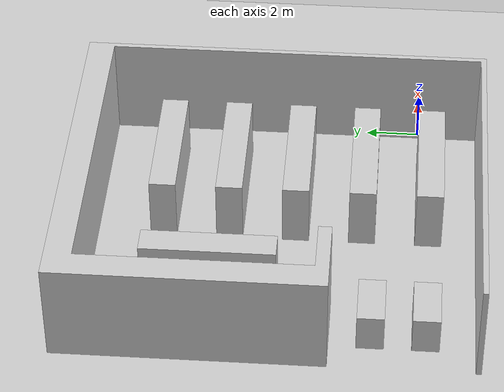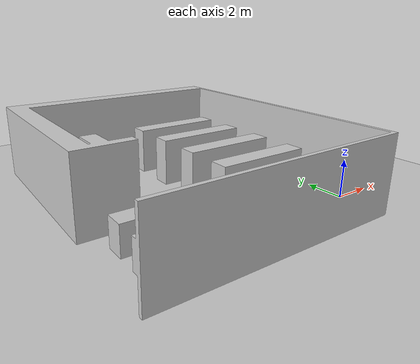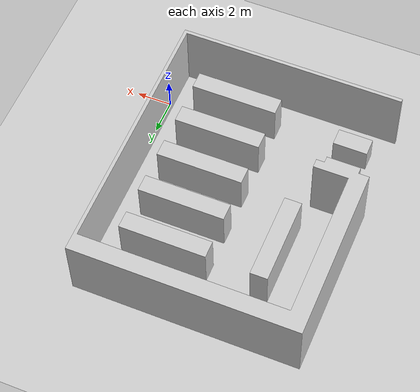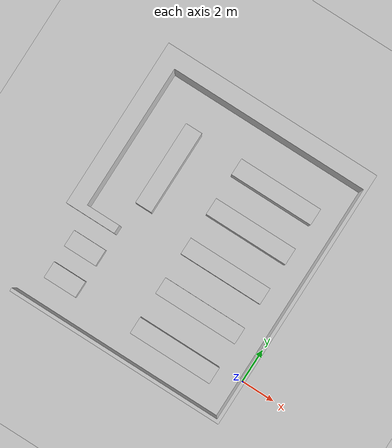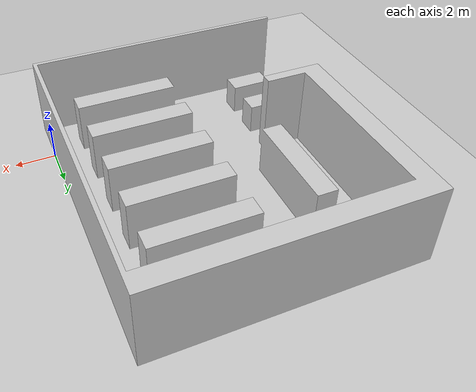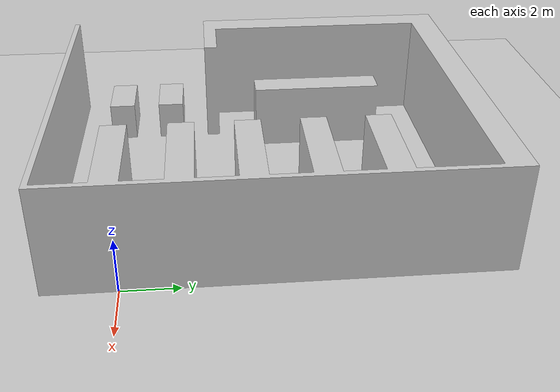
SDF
<?xml version="1.0" ?>
<sdf version="1.6">
  <world name="supermarket_world">

    <physics name="1ms" type="ignored">
      <max_step_size>0.001</max_step_size>
      <real_time_factor>1.0</real_time_factor>
    </physics>

    <plugin filename="gz-sim-physics-system" name="gz::sim::systems::Physics"></plugin>
    <plugin filename="gz-sim-user-commands-system" name="gz::sim::systems::UserCommands"></plugin>
    <plugin filename="gz-sim-scene-broadcaster-system" name="gz::sim::systems::SceneBroadcaster"></plugin>

    <plugin filename="gz-sim-sensors-system" name="gz::sim::systems::Sensors">
      <render_engine>ogre2</render_engine>
    </plugin>

    <light type="directional" name="sun">
      <cast_shadows>true</cast_shadows>
      <pose>0 0 10 0 0 0</pose>
      <diffuse>0.8 0.8 0.8 1</diffuse>
      <specular>0.2 0.2 0.2 1</specular>
      <direction>-0.5 0.1 -0.9</direction>
    </light>

    <include>
      <uri>model://my_supermarket</uri>
      <name>supermarket_building</name>
      <pose>0 0 0 0 0 0</pose>
    </include>

    <model name="ground_plane">
      <static>true</static>
      <link name="link">
        <collision name="collision">
          <geometry>
            <plane><normal>0 0 1</normal><size>100 100</size></plane>
          </geometry>
        </collision>
        <visual name="visual">
          <geometry>
            <plane><normal>0 0 1</normal><size>100 100</size></plane>
          </geometry>
          <material>
            <ambient>0.8 0.8 0.8 1</ambient>
            <diffuse>0.8 0.8 0.8 1</diffuse>
          </material>
        </visual>
      </link>
    </model>

  </world>
</sdf>

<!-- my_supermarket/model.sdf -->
<sdf version="1.6">
  <model name="my_supermarket">
    <static>true</static> <link name="link">
      <collision name="collision">
        <geometry>
          <mesh>
            <uri>model://my_supermarket/meshes/supermarket_model.stl</uri>
            </mesh>
        </geometry>
      </collision>
      <visual name="visual">
        <geometry>
          <mesh>
            <uri>model://my_supermarket/meshes/supermarket_model.stl</uri>
            <scale>0.001 0.001 0.001</scale>
          </mesh>
        </geometry>
        <material>
          <ambient>0.8 0.8 0.8 1</ambient>
          <diffuse>0.8 0.8 0.8 1</diffuse>
        </material>
      </visual>
    </link>
  </model>
</sdf>
